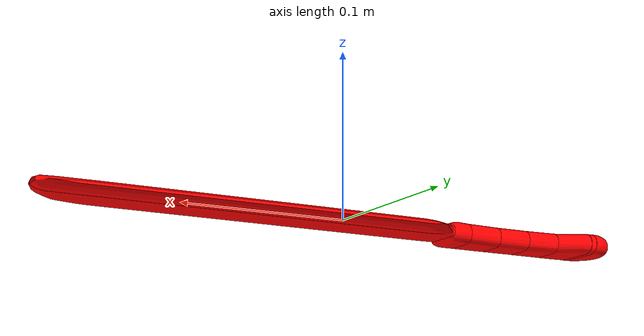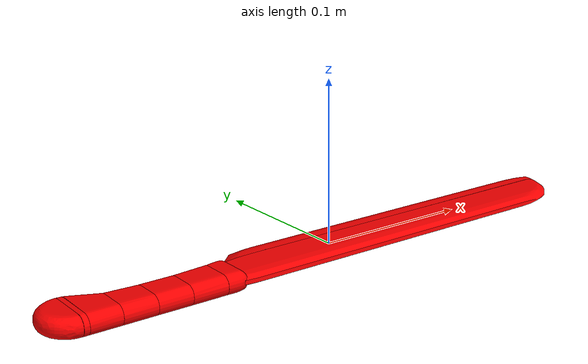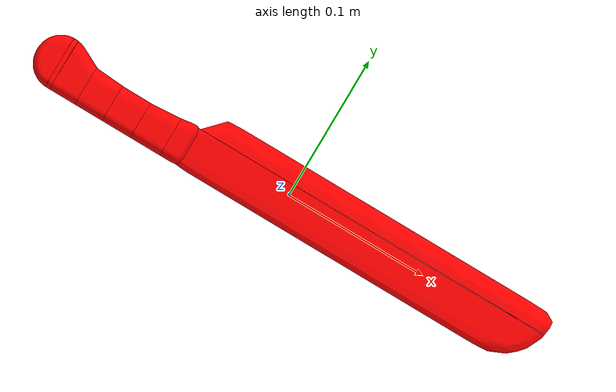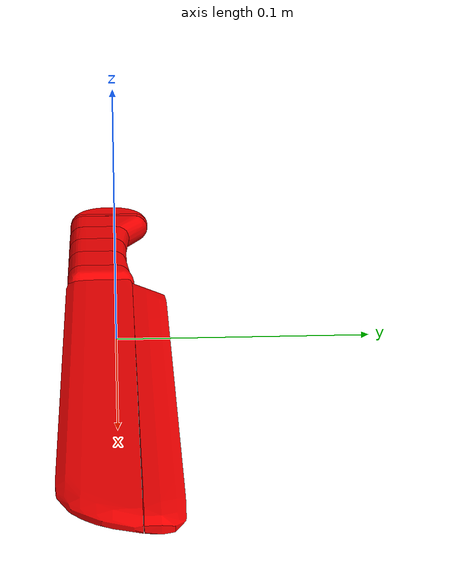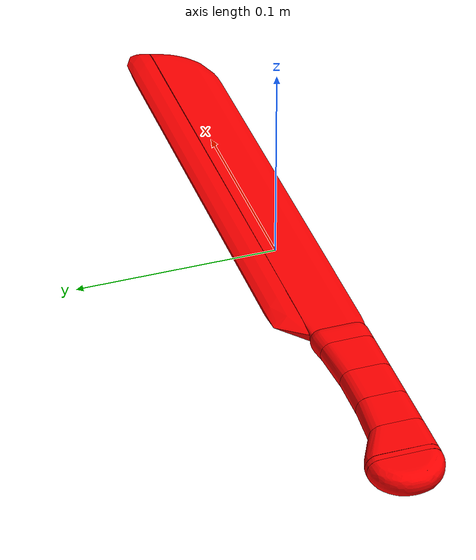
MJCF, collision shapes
<?xml version="1.0" ?>
<mujoco model="bread_knife">
	<compiler meshdir="bread_knife/meshes" texturedir="bread_knife/textures" angle="radian" autolimits="true" balanceinertia="true" boundmass="0.000001" boundinertia="0.000001"/>
	<default>
		<default class="visual">
			<geom contype="0" conaffinity="0"/>
		</default>
		<default class="collision">
			<geom rgba="1.0 0.0 0.0 0.0"/>
		</default>
	</default>
	<asset>
		<mesh name="BreadKnifeBlade001" file="stl/BreadKnifeBlade001.stl" scale="1.0 1.0 1.0"/>
		<mesh name="BreadKnifeBlade001_001" file="stl/BreadKnifeBlade001_001.stl" scale="1.0 1.0 1.0"/>
		<mesh name="BreadKnifeBlade001_002" file="stl/BreadKnifeBlade001_002.stl" scale="1.0 1.0 1.0"/>
		<mesh name="BreadKnifeHilt" file="obj/BreadKnifeHilt.obj" scale="1.0 1.0 1.0"/>
		<mesh name="BreadKnifeHilt_001" file="stl/BreadKnifeHilt_001.stl" scale="1.0 1.0 1.0"/>
		<mesh name="BreadKnifeHilt_002" file="stl/BreadKnifeHilt_002.stl" scale="1.0 1.0 1.0"/>
		<mesh name="BreadKnifeHilt_003" file="stl/BreadKnifeHilt_003.stl" scale="1.0 1.0 1.0"/>
		<mesh name="BreadKnifeHilt_004" file="stl/BreadKnifeHilt_004.stl" scale="1.0 1.0 1.0"/>
		<mesh name="BreadKnifeHilt_005" file="stl/BreadKnifeHilt_005.stl" scale="1.0 1.0 1.0"/>
		<mesh name="BreadKnifeHilt_006" file="stl/BreadKnifeHilt_006.stl" scale="1.0 1.0 1.0"/>
		<mesh name="BreadKnifeHilt_007" file="stl/BreadKnifeHilt_007.stl" scale="1.0 1.0 1.0"/>
		<mesh name="BreadKnifeBlade002" file="stl/BreadKnifeBlade002.stl" scale="1.0 1.0 1.0"/>
		<mesh name="BreadKnifeBlade002_001" file="stl/BreadKnifeBlade002_001.stl" scale="1.0 1.0 1.0"/>
		<mesh name="BreadKnifeBlade002_002" file="stl/BreadKnifeBlade002_002.stl" scale="1.0 1.0 1.0"/>
		<mesh name="BreadKnifeBlade002_003" file="stl/BreadKnifeBlade002_003.stl" scale="1.0 1.0 1.0"/>
		<material name="M_BreadKnifeBlade001" rgba="0.660099983215332 0.660099983215332 0.660099983215332 1.0" emission="0.0"/>
		<material name="M_BreadKnifeHilt" texture="T_BreadKnifeHilt"/>
		<material name="M_BreadKnifeBlade002" rgba="0.660099983215332 0.660099983215332 0.660099983215332 1.0" emission="0.0"/>
		<texture name="T_BreadKnifeHilt" type="2d" file="T_BreadKnifeHilt.png"/>
	</asset>
	<worldbody>
		<body name="bread_knife" pos="0.0 0.0 0.0" quat="1.0 0.0 0.0 0.0">
			<body name="bread_knife_blade001" pos="0.0 0.0 0.0" quat="1.0 0.0 0.0 0.0">
				<inertial mass="0.10997344553470612" pos="0.04096376895904541 -0.002142630284652114 3.977959568146616e-05" quat="0.9999995827674866 -0.000538008171133697 -9.956709254765883e-05 0.0007049781852401793" diaginertia="1.0363974979554769e-05 0.0008984170272015035 0.0009087389335036278"/>
				<geom name="BreadKnifeBlade001" type="mesh" pos="0.0 0.0 0.0" quat="1.0 0.0 0.0 0.0" mesh="BreadKnifeBlade001" material="M_BreadKnifeBlade001" class="visual"/>
				<geom name="BreadKnifeBlade001_001" type="mesh" pos="0.0 0.0 0.0" quat="1.0 0.0 0.0 0.0" mesh="BreadKnifeBlade001_001" class="collision"/>
				<geom name="BreadKnifeBlade001_002" type="mesh" pos="0.0 0.0 0.0" quat="1.0 0.0 0.0 0.0" mesh="BreadKnifeBlade001_002" class="collision"/>
			</body>
			<body name="bread_knife_blade002" pos="0.0 0.0 0.0" quat="1.0 0.0 0.0 0.0">
				<inertial mass="0.010198382660746574" pos="-0.1262253224849701 -0.005297889467328787 -2.7605500108052183e-09" quat="0.9998360276222229 5.0466510401747655e-06 8.970398113206102e-08 0.018107598647475243" diaginertia="2.2392976006813115e-07 0.00017526489682495594 0.00017531418416183442"/>
				<geom name="BreadKnifeBlade002" type="mesh" pos="0.0 0.0 0.0" quat="1.0 0.0 0.0 0.0" mesh="BreadKnifeBlade002" material="M_BreadKnifeBlade002" class="visual"/>
				<geom name="BreadKnifeBlade002_001" type="mesh" pos="0.0 0.0 0.0" quat="1.0 0.0 0.0 0.0" mesh="BreadKnifeBlade002_001" class="collision"/>
				<geom name="BreadKnifeBlade002_002" type="mesh" pos="0.0 0.0 0.0" quat="1.0 0.0 0.0 0.0" mesh="BreadKnifeBlade002_002" class="collision"/>
				<geom name="BreadKnifeBlade002_003" type="mesh" pos="0.0 0.0 0.0" quat="1.0 0.0 0.0 0.0" mesh="BreadKnifeBlade002_003" class="collision"/>
			</body>
			<body name="bread_knife_hilt" pos="0.0 0.0 0.0" quat="1.0 0.0 0.0 0.0">
				<inertial mass="0.20699134469032288" pos="-0.12984220683574677 -0.005874170456081629 9.566288099449594e-07" quat="0.9998019337654114 -0.00010276866669300944 4.568322253817314e-07 0.019901413470506668" diaginertia="1.5195051673799753e-05 0.0037243471015244722 0.0037363204173743725"/>
				<geom name="BreadKnifeHilt" type="mesh" pos="0.0 0.0 0.0" quat="1.0 0.0 0.0 0.0" mesh="BreadKnifeHilt" material="M_BreadKnifeHilt" class="visual"/>
				<geom name="BreadKnifeHilt_001" type="mesh" pos="0.0 0.0 0.0" quat="1.0 0.0 0.0 0.0" mesh="BreadKnifeHilt_001" class="collision"/>
				<geom name="BreadKnifeHilt_002" type="mesh" pos="0.0 0.0 0.0" quat="1.0 0.0 0.0 0.0" mesh="BreadKnifeHilt_002" class="collision"/>
				<geom name="BreadKnifeHilt_003" type="mesh" pos="0.0 0.0 0.0" quat="1.0 0.0 0.0 0.0" mesh="BreadKnifeHilt_003" class="collision"/>
				<geom name="BreadKnifeHilt_004" type="mesh" pos="0.0 0.0 0.0" quat="1.0 0.0 0.0 0.0" mesh="BreadKnifeHilt_004" class="collision"/>
				<geom name="BreadKnifeHilt_005" type="mesh" pos="0.0 0.0 0.0" quat="1.0 0.0 0.0 0.0" mesh="BreadKnifeHilt_005" class="collision"/>
				<geom name="BreadKnifeHilt_006" type="mesh" pos="0.0 0.0 0.0" quat="1.0 0.0 0.0 0.0" mesh="BreadKnifeHilt_006" class="collision"/>
				<geom name="BreadKnifeHilt_007" type="mesh" pos="0.0 0.0 0.0" quat="1.0 0.0 0.0 0.0" mesh="BreadKnifeHilt_007" class="collision"/>
			</body>
		</body>
	</worldbody>
	<equality/>
</mujoco>
